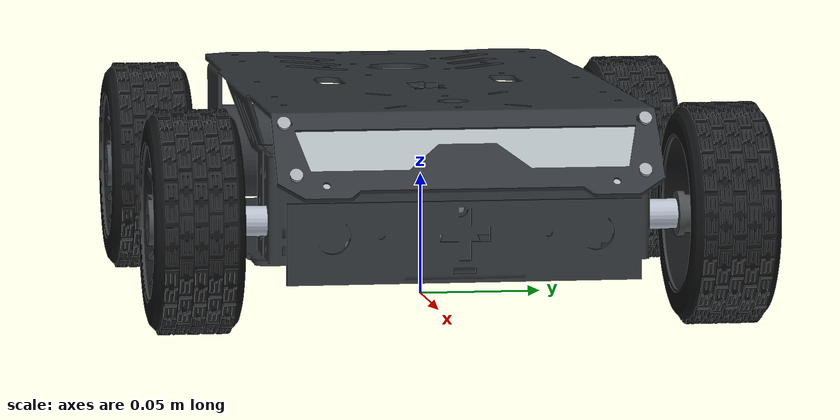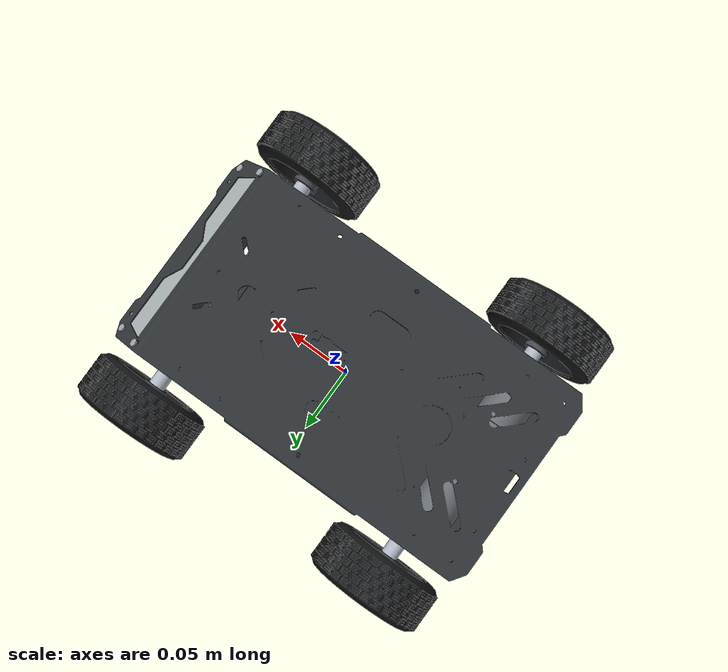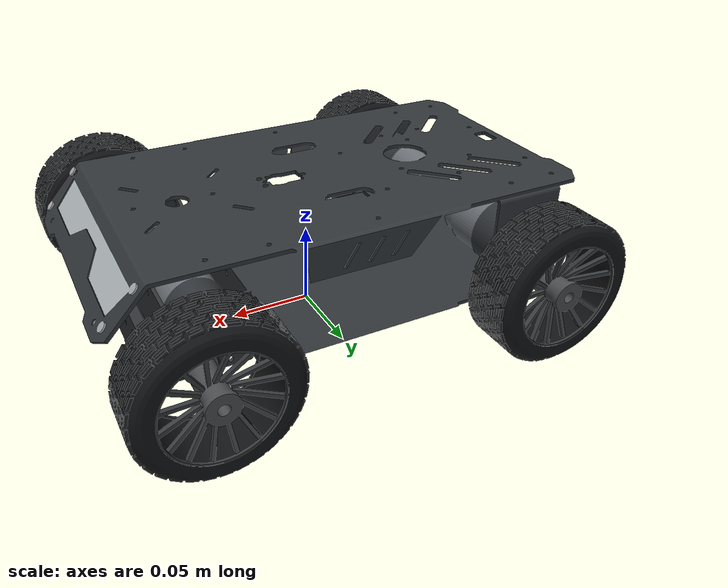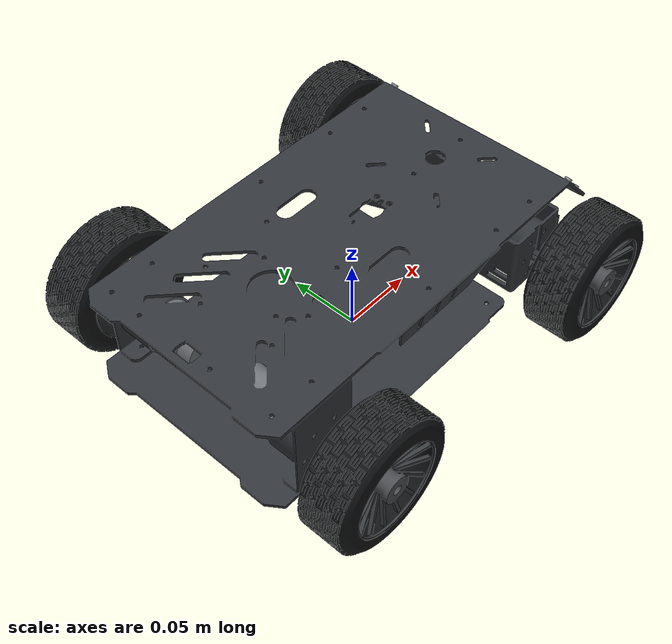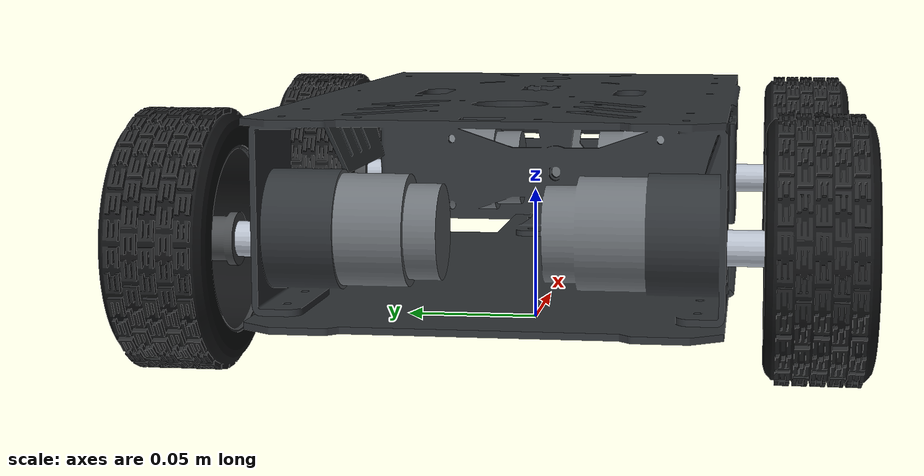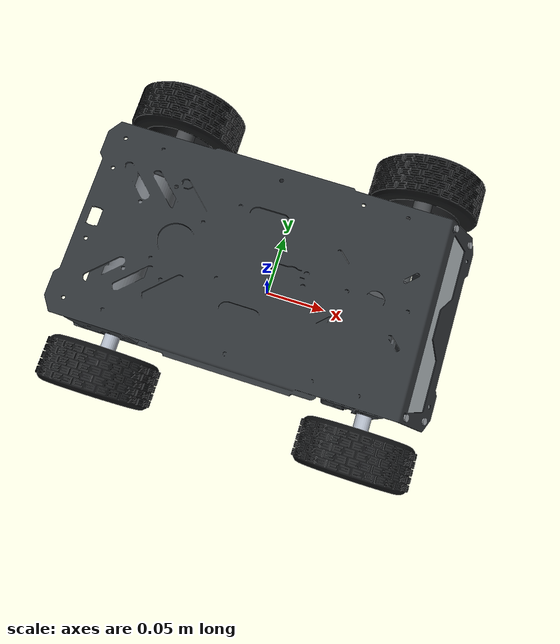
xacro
<?xml version="1.0"?>
<robot xmlns:xacro="http://www.ros.org/wiki/xacro" name="orv_4wd">
  <xacro:arg name="wheel_radius" default="0.044"/>
  <xacro:arg name="outer_width" default="0.245"/>
  <xacro:arg name="wheel_width" default="0.035"/>
  <xacro:arg name="chassis_length" default="0.290"/>
  <xacro:arg name="chassis_height" default="0.067"/>
  <xacro:arg name="ground_clearance" default="0.021"/>
  <xacro:arg name="axle_radius" default="0.006"/>
  <!-- Zero derives the center spacing from outer_width - wheel_width.
       A positive track_width overrides outer_width for calibrated driving models. -->
  <xacro:arg name="track_width" default="0.0"/>
  <xacro:arg name="wheelbase" default="0.200"/>
  <xacro:arg name="chassis_width" default="0.0"/>
  <xacro:property name="radius" value="$(arg wheel_radius)"/>
  <xacro:property name="body_height" value="$(arg chassis_height)"/>
  <xacro:property name="clearance" value="$(arg ground_clearance)"/>
  <xacro:property name="body_z" value="${float(clearance)+float(body_height)/2}"/>
  <xacro:property name="width" value="$(arg wheel_width)"/>
  <xacro:property name="outside" value="$(arg outer_width)"/>
  <xacro:property name="track_override" value="$(arg track_width)"/>
  <xacro:property name="track" value="${float(track_override) if float(track_override) > 0 else float(outside) - float(width)}"/>
  <xacro:property name="body_width_override" value="$(arg chassis_width)"/>
  <xacro:property name="body_width" value="${float(body_width_override) if float(body_width_override) > 0 else max(0.01, float(track)-float(width)-0.02)}"/>
  <xacro:property name="half_wheelbase" value="${float('$(arg wheelbase)')/2}"/>
  <material name="axle_metal"><color rgba="0.72 0.75 0.80 1"/></material>
  <link name="base_link"/>
  <link name="chassis_link">
    <visual>
      <geometry><mesh filename="package://orv_description/meshes/v3_chassis.dae"
        scale="${float('$(arg chassis_length)')/0.290} ${body_width/0.155} ${float(body_height)/0.067}"/></geometry>
    </visual>
    <collision><geometry><box size="$(arg chassis_length) ${body_width} ${body_height}"/></geometry></collision>
  </link>
  <joint name="chassis_fixed" type="fixed"><parent link="base_link"/><child link="chassis_link"/><origin xyz="0 0 ${body_z}"/></joint>
  <xacro:macro name="wheel" params="name x y">
    <!-- The axle frame is at the wheel center. Its visual extends inward
         through the wheel and 2 mm into the chassis to bridge the gap. -->
    <xacro:property name="side" value="${1 if float(y) > 0 else -1}"/>
    <xacro:property name="shaft_length" value="${side*float(y)-float(body_width)/2+0.002}"/>
    <link name="${name}_axle_link">
      <visual>
        <origin xyz="0 ${-side*shaft_length/2} 0" rpy="${pi/2} 0 0"/>
        <geometry><cylinder radius="$(arg axle_radius)" length="${shaft_length}"/></geometry>
        <material name="axle_metal"/>
      </visual>
    </link>
    <joint name="${name}_axle_fixed" type="fixed">
      <parent link="chassis_link"/><child link="${name}_axle_link"/>
      <origin xyz="${x} ${y} ${float(radius)-body_z}"/>
    </joint>
    <link name="${name}_wheel_link">
      <visual>
        <origin rpy="${pi if side == -1 else 0} 0 0"/>
        <geometry><mesh filename="package://orv_description/meshes/rubber_wheel.dae"
          scale="${float(radius)/0.044} ${float(width)/0.035} ${float(radius)/0.044}"/></geometry>
      </visual>
      <collision><origin rpy="${pi/2} 0 0"/><geometry><cylinder radius="${radius}" length="${width}"/></geometry></collision>
    </link>
    <joint name="${name}_wheel_joint" type="continuous">
      <parent link="${name}_axle_link"/><child link="${name}_wheel_link"/>
      <origin xyz="0 0 0"/><axis xyz="0 1 0"/>
    </joint>
  </xacro:macro>
  <xacro:wheel name="front_left" x="${half_wheelbase}" y="${float(track)/2}"/>
  <xacro:wheel name="rear_left" x="${-half_wheelbase}" y="${float(track)/2}"/>
  <xacro:wheel name="front_right" x="${half_wheelbase}" y="${-float(track)/2}"/>
  <xacro:wheel name="rear_right" x="${-half_wheelbase}" y="${-float(track)/2}"/>
</robot>
